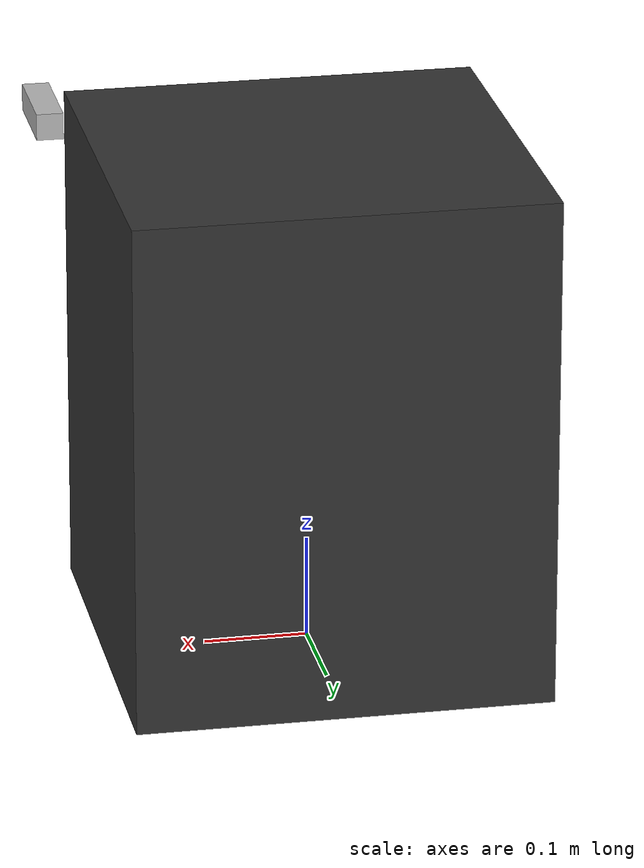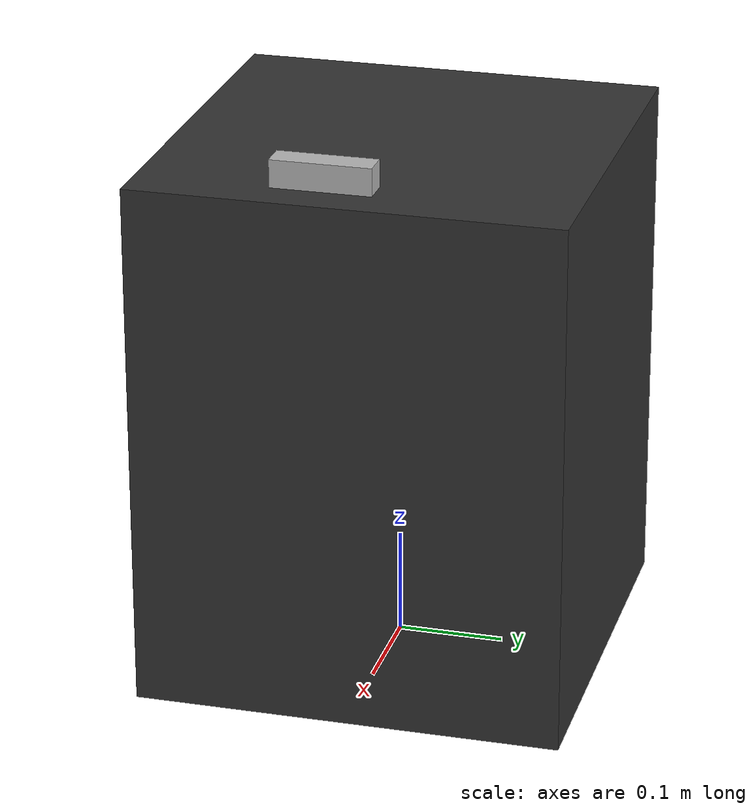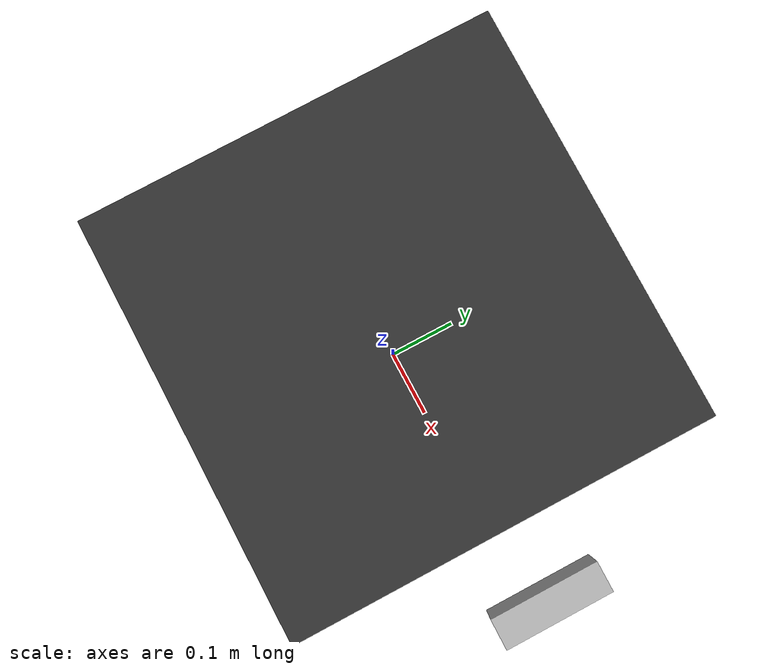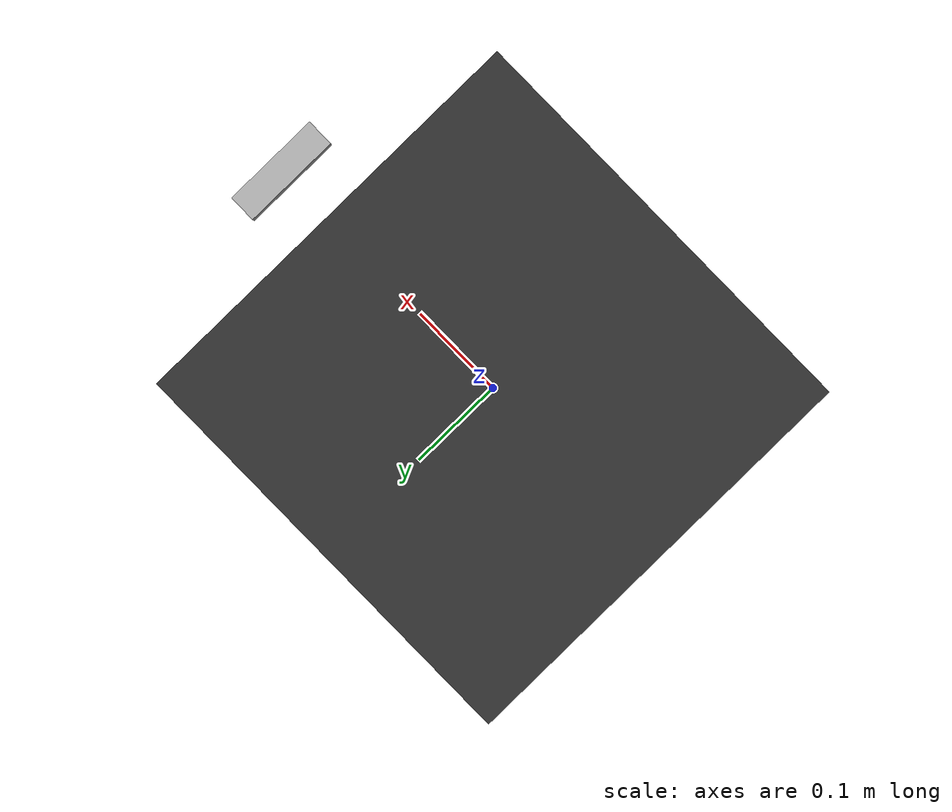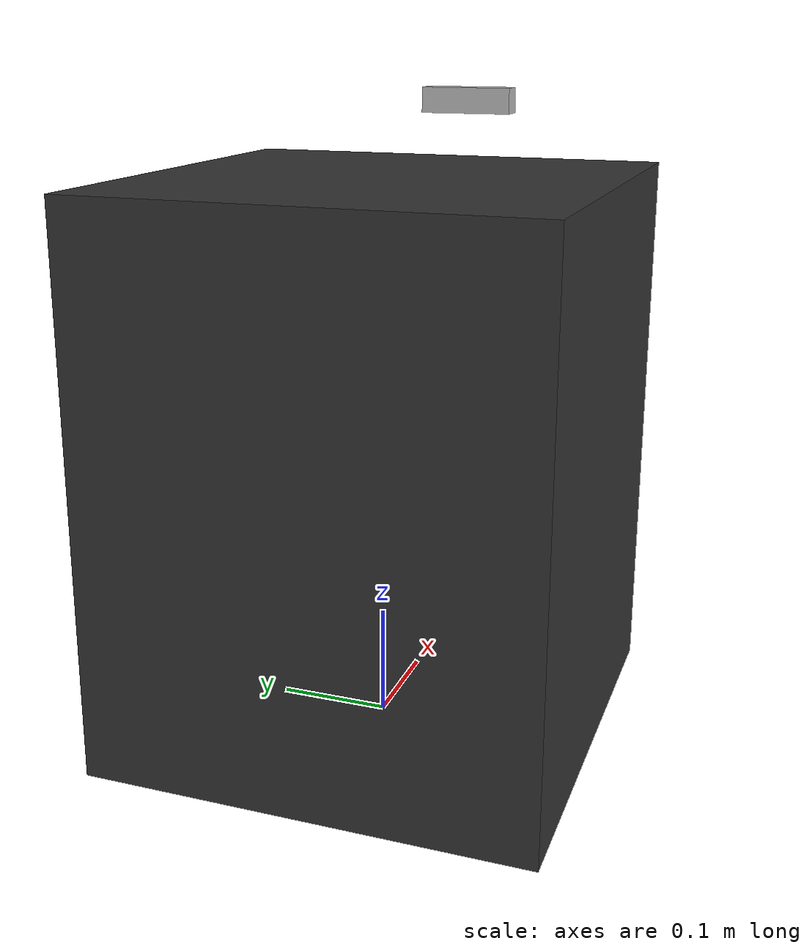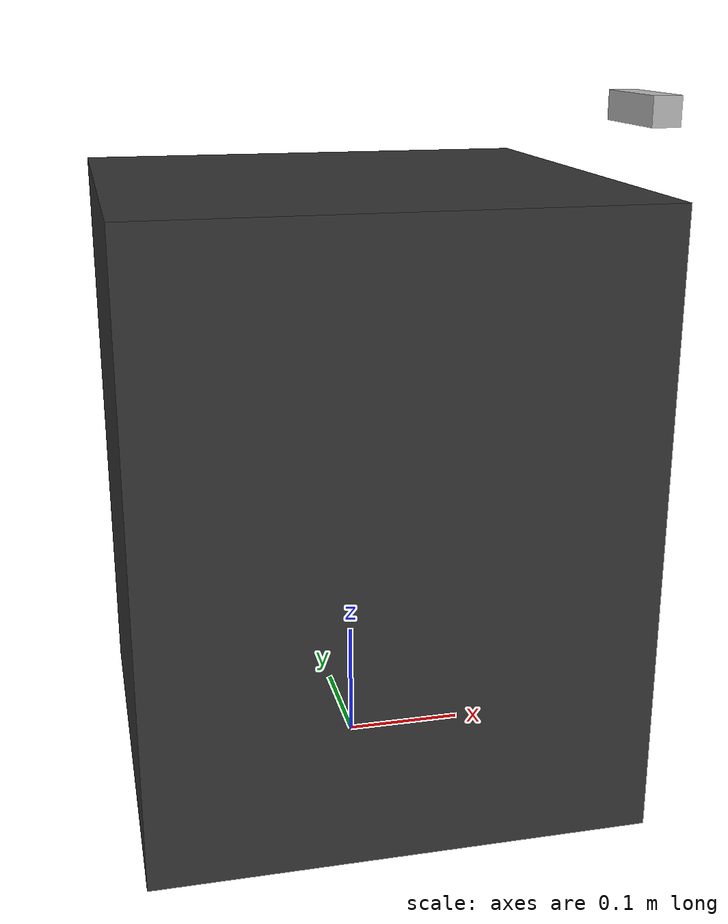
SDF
<?xml version="1.0"?>
<sdf version="1.6">
  <model name="camera_stand">
    <static>true</static>
    <!-- HERE WE TUNEd THE PARAMETERS OF THE RGBD CAMERA TO MATCH THE D435F REALSENSE -->
    <link name="stand_link">
      <!-- Lift the link so the 0.5m-tall box sits on the ground -->
      <pose>0 0 0.25 0 0 0</pose>

      <collision name="stand_collision">
        <geometry>
          <box><size>0.4 0.4 0.5</size></box>
        </geometry>
      </collision>

      <visual name="stand_visual">
        <geometry>
          <box><size>0.4 0.4 0.5</size></box>
        </geometry>
        <material>
          <ambient>0.2 0.2 0.2 1</ambient>
          <diffuse>0.2 0.2 0.2 1</diffuse>
        </material>
      </visual>

      <!-- D435f camera body (90mm wide x 25mm tall x 25mm deep) -->
      <visual name="camera_body">
        <pose>0.25 0 0.30 0 0 0</pose>
        <geometry>
          <box><size>0.025 0.09 0.025</size></box>
        </geometry>
      </visual>

      <!-- ===== Intel RealSense D435f — Depth Sensor (IR Stereo) ===== -->
      <!-- FOV: 87deg x 58deg, Resolution: 1280x720, Range: 0.105m-10m -->
      <!-- Pose: left IR imager position (D435f coordinate origin) -->
      <sensor name="d435f_depth" type="depth">
        <pose>0.25 0 0.30 0 0 0</pose>
        <visualize>true</visualize>
        <always_on>true</always_on>
        <update_rate>30</update_rate>

        <camera>
          <horizontal_fov>1.518</horizontal_fov>

          <image>
            <width>1280</width>
            <height>720</height>
            <format>R8G8B8</format>
          </image>

          <clip>
            <near>0.105</near>
            <far>10.0</far>
          </clip>

          <!-- Depth noise (Gaussian approximation of D435f stereo noise) -->
          <noise>
            <type>gaussian</type>
            <mean>0.0</mean>
            <stddev>0.01</stddev>
          </noise>
        </camera>

        <plugin name="d435f_depth_plugin" filename="libgazebo_ros_depth_camera.so">
          <robotNamespace>/demo</robotNamespace>
          <cameraName>rgbd_camera</cameraName>
          <frameName>rgbd_camera_optical_frame</frameName>

          <!-- Depth topics (unchanged) -->
          <depthImageTopicName>depth/image_raw</depthImageTopicName>
          <depthImageInfoTopicName>depth/camera_info</depthImageInfoTopicName>

          <!-- Point cloud (unchanged) -->
          <pointCloudTopicName>depth/points</pointCloudTopicName>

          <!-- IR image from depth sensor (additional topic, not used downstream) -->
          <imageTopicName>ir/image_raw</imageTopicName>
          <cameraInfoTopicName>ir/camera_info</cameraInfoTopicName>

          <!-- Range limits matching D435f minimum depth -->
          <pointCloudCutoff>0.105</pointCloudCutoff>
          <pointCloudCutoffMax>10.0</pointCloudCutoffMax>
        </plugin>
      </sensor>

      <!-- ===== Intel RealSense D435f — RGB Sensor ===== -->
      <!-- FOV: 69.4deg x 42.5deg, Resolution: 1920x1080 -->
      <!-- Offset ~15mm lateral from depth origin (matches physical D435f layout) -->
      <sensor name="d435f_color" type="camera">
        <pose>0.25 -0.015 0.30 0 0 0</pose>
        <visualize>false</visualize>
        <always_on>true</always_on>
        <update_rate>30</update_rate>

        <camera>
          <horizontal_fov>1.211</horizontal_fov>

          <image>
            <width>1920</width>
            <height>1080</height>
            <format>R8G8B8</format>
          </image>

          <clip>
            <near>0.105</near>
            <far>10.0</far>
          </clip>
        </camera>

        <plugin name="d435f_color_plugin" filename="libgazebo_ros_camera.so">
          <robotNamespace>/demo/rgbd_camera</robotNamespace>
          <cameraName>rgb</cameraName>
          <frameName>rgbd_camera_color_optical_frame</frameName>

          <!-- RGB topics (unchanged: /demo/rgbd_camera/rgb/image_raw) -->
          <imageTopicName>image_raw</imageTopicName>
          <cameraInfoTopicName>camera_info</cameraInfoTopicName>
        </plugin>
      </sensor>

    </link>
  </model>
</sdf>
